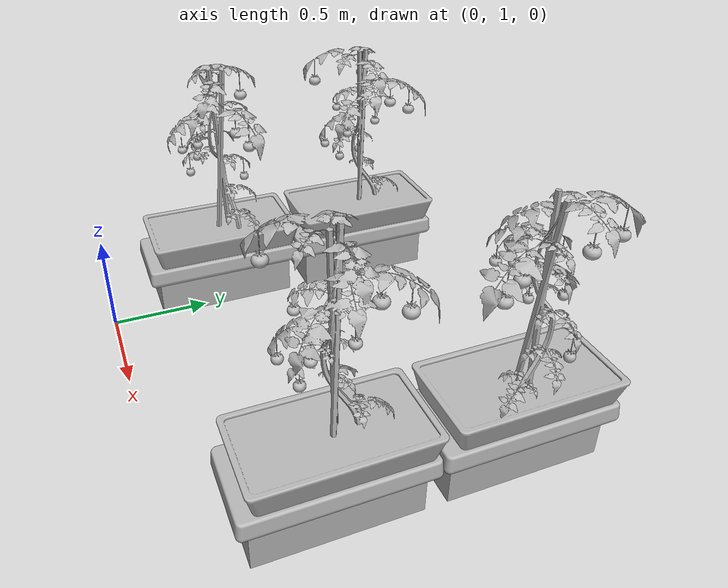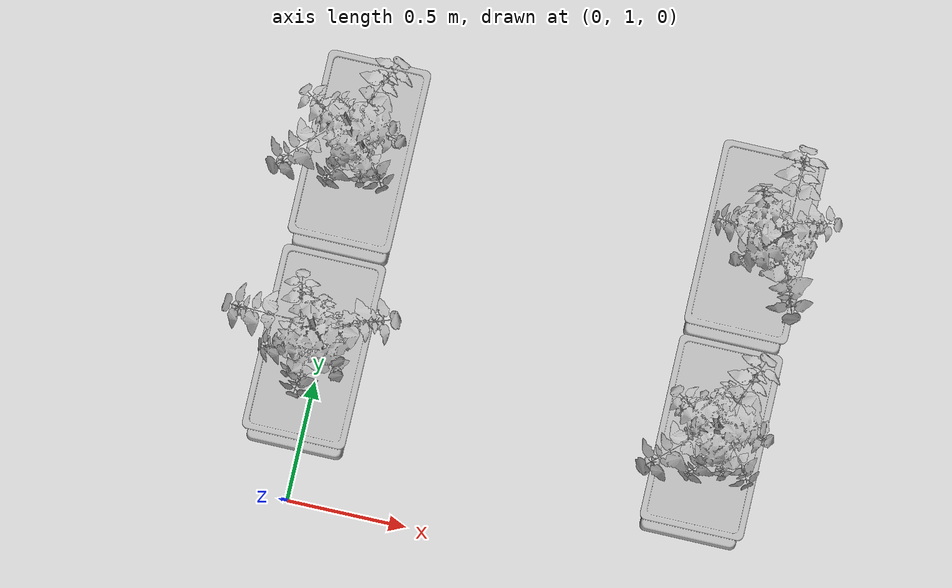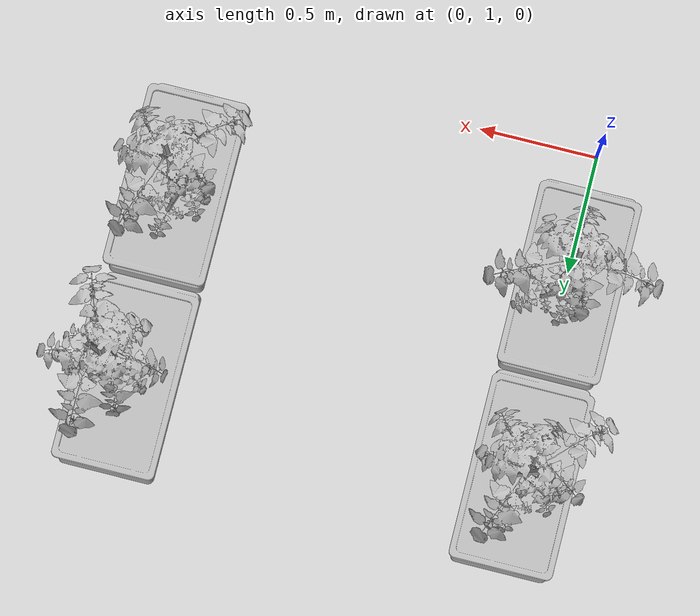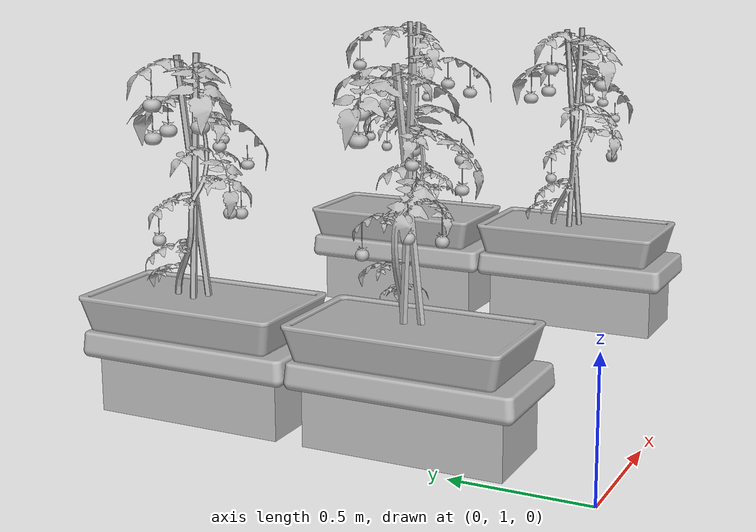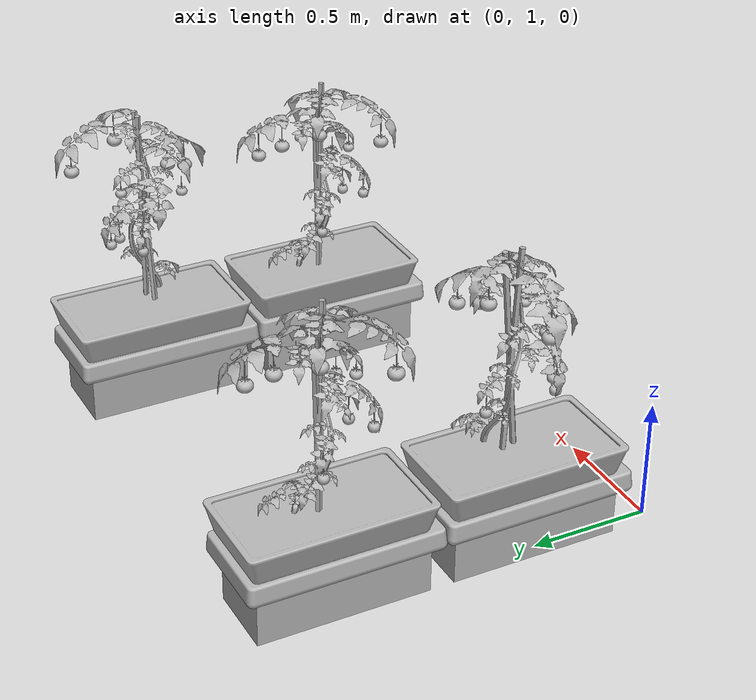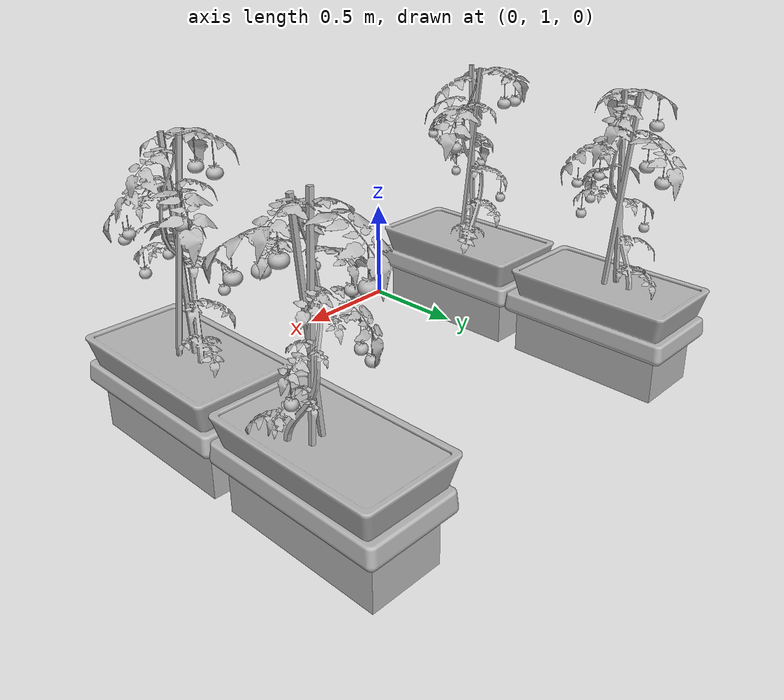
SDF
<sdf version="1.6">
 <world name="default">
  <model name="plant02">
   <static>0</static>
   <link name="tomato_plant_link">
    <inertial>
     <mass>20</mass>
     <inertia><ixx>1</ixx><ixy>0</ixy><ixz>0</ixz><iyy>1</iyy><iyz>0</iyz><izz>1</izz></inertia>
    </inertial>
    <visual name="visual">
     <geometry><mesh><uri>model://tomato_plant/meshes/tomato_plant.obj</uri></mesh></geometry>
    </visual>
    <collision name="collision">
     <pose>0 0 0.01 0 -0 0</pose>
     <geometry><cylinder><radius>0.2</radius><length>0.02</length></cylinder></geometry>
    </collision>
   </link>
   <link name="t_link_0">
    <pose>0.176111 0.046061 0.713729 0 -0 0</pose>
    <inertial>
     <mass>0.1</mass>
     <inertia><ixx>1</ixx><ixy>0</ixy><ixz>0</ixz><iyy>1</iyy><iyz>0</iyz><izz>1</izz></inertia>
    </inertial>
    <collision name="collision"><geometry><sphere><radius>0.02</radius></sphere></geometry></collision>
    <visual name="visual">
     <geometry><mesh><uri>model://green_tomato/meshes/green_tomato.obj</uri></mesh></geometry>
    </visual>
   </link>
   <joint name="t_joint_0" type="fixed">
    <parent>tomato_plant_link</parent>
    <child>t_link_0</child>
    <axis>
     <xyz>0 0 1</xyz>
     <use_parent_model_frame>1</use_parent_model_frame>
     <limit><lower>-1e+16</lower><upper>1e+16</upper></limit>
    </axis>
    <sensor name="force_torque" type="force_torque">
     <always_on>1</always_on>
     <update_rate>250</update_rate>
     <plugin name="breakable_0" filename="libBreakableJointPlugin.so">
      <breaking_force_N>20</breaking_force_N>
     </plugin>
    </sensor>
   </joint>
   <link name="t_link_1">
    <pose>0.063172 0.108629 0.685474 0 -0 0</pose>
    <inertial>
     <mass>0.1</mass>
     <inertia><ixx>1</ixx><ixy>0</ixy><ixz>0</ixz><iyy>1</iyy><iyz>0</iyz><izz>1</izz></inertia>
    </inertial>
    <collision name="collision"><geometry><sphere><radius>0.02</radius></sphere></geometry></collision>
    <visual name="visual">
     <geometry><mesh><uri>model://green_tomato/meshes/green_tomato.obj</uri></mesh></geometry>
    </visual>
   </link>
   <joint name="t_joint_1" type="fixed">
    <parent>tomato_plant_link</parent>
    <child>t_link_1</child>
    <axis>
     <xyz>0 0 1</xyz>
     <use_parent_model_frame>1</use_parent_model_frame>
     <limit><lower>-1e+16</lower><upper>1e+16</upper></limit>
    </axis>
    <sensor name="force_torque" type="force_torque">
     <always_on>1</always_on>
     <update_rate>250</update_rate>
     <plugin name="breakable_1" filename="libBreakableJointPlugin.so">
      <breaking_force_N>20</breaking_force_N>
     </plugin>
    </sensor>
   </joint>
   <link name="t_link_2">
    <pose>0.062027 -0.170581 0.614534 0 -0 0</pose>
    <inertial>
     <mass>0.1</mass>
     <inertia><ixx>1</ixx><ixy>0</ixy><ixz>0</ixz><iyy>1</iyy><iyz>0</iyz><izz>1</izz></inertia>
    </inertial>
    <collision name="collision"><geometry><sphere><radius>0.02</radius></sphere></geometry></collision>
    <visual name="visual">
     <geometry><mesh><uri>model://green_tomato/meshes/green_tomato.obj</uri></mesh></geometry>
    </visual>
   </link>
   <joint name="t_joint_2" type="fixed">
    <parent>tomato_plant_link</parent>
    <child>t_link_2</child>
    <axis>
     <xyz>0 0 1</xyz>
     <use_parent_model_frame>1</use_parent_model_frame>
     <limit><lower>-1e+16</lower><upper>1e+16</upper></limit>
    </axis>
    <sensor name="force_torque" type="force_torque">
     <always_on>1</always_on>
     <update_rate>250</update_rate>
     <plugin name="breakable_2" filename="libBreakableJointPlugin.so">
      <breaking_force_N>20</breaking_force_N>
     </plugin>
    </sensor>
   </joint>
   <link name="t_link_3">
    <pose>0.114746 0.0304 0.926457 0 -0 0</pose>
    <inertial>
     <mass>0.1</mass>
     <inertia><ixx>1</ixx><ixy>0</ixy><ixz>0</ixz><iyy>1</iyy><iyz>0</iyz><izz>1</izz></inertia>
    </inertial>
    <collision name="collision"><geometry><sphere><radius>0.02</radius></sphere></geometry></collision>
    <visual name="visual">
     <geometry><mesh><uri>model://yellow_tomato/meshes/yellow_tomato.obj</uri></mesh></geometry>
    </visual>
   </link>
   <joint name="t_joint_3" type="fixed">
    <parent>tomato_plant_link</parent>
    <child>t_link_3</child>
    <axis>
     <xyz>0 0 1</xyz>
     <use_parent_model_frame>1</use_parent_model_frame>
     <limit><lower>-1e+16</lower><upper>1e+16</upper></limit>
    </axis>
    <sensor name="force_torque" type="force_torque">
     <always_on>1</always_on>
     <update_rate>250</update_rate>
     <plugin name="breakable_3" filename="libBreakableJointPlugin.so">
      <breaking_force_N>20</breaking_force_N>
     </plugin>
    </sensor>
   </joint>
   <link name="t_link_4">
    <pose>0.003426 0.147925 0.840454 0 -0 0</pose>
    <inertial>
     <mass>0.1</mass>
     <inertia><ixx>1</ixx><ixy>0</ixy><ixz>0</ixz><iyy>1</iyy><iyz>0</iyz><izz>1</izz></inertia>
    </inertial>
    <collision name="collision"><geometry><sphere><radius>0.02</radius></sphere></geometry></collision>
    <visual name="visual">
     <geometry><mesh><uri>model://yellow_tomato/meshes/yellow_tomato.obj</uri></mesh></geometry>
    </visual>
   </link>
   <joint name="t_joint_4" type="fixed">
    <parent>tomato_plant_link</parent>
    <child>t_link_4</child>
    <axis>
     <xyz>0 0 1</xyz>
     <use_parent_model_frame>1</use_parent_model_frame>
     <limit><lower>-1e+16</lower><upper>1e+16</upper></limit>
    </axis>
    <sensor name="force_torque" type="force_torque">
     <always_on>1</always_on>
     <update_rate>250</update_rate>
     <plugin name="breakable_4" filename="libBreakableJointPlugin.so">
      <breaking_force_N>20</breaking_force_N>
     </plugin>
    </sensor>
   </joint>
   <link name="t_link_5">
    <pose>-0.12391 0.091553 0.91111 0 -0 0</pose>
    <inertial>
     <mass>0.1</mass>
     <inertia><ixx>1</ixx><ixy>0</ixy><ixz>0</ixz><iyy>1</iyy><iyz>0</iyz><izz>1</izz></inertia>
    </inertial>
    <collision name="collision"><geometry><sphere><radius>0.02</radius></sphere></geometry></collision>
    <visual name="visual">
     <geometry><mesh><uri>model://yellow_tomato/meshes/yellow_tomato.obj</uri></mesh></geometry>
    </visual>
   </link>
   <joint name="t_joint_5" type="fixed">
    <parent>tomato_plant_link</parent>
    <child>t_link_5</child>
    <axis>
     <xyz>0 0 1</xyz>
     <use_parent_model_frame>1</use_parent_model_frame>
     <limit><lower>-1e+16</lower><upper>1e+16</upper></limit>
    </axis>
    <sensor name="force_torque" type="force_torque">
     <always_on>1</always_on>
     <update_rate>250</update_rate>
     <plugin name="breakable_5" filename="libBreakableJointPlugin.so">
      <breaking_force_N>20</breaking_force_N>
     </plugin>
    </sensor>
   </joint>
   <link name="t_link_6">
    <pose>-0.23014 -0.132697 0.911579 0 -0 0</pose>
    <inertial>
     <mass>0.1</mass>
     <inertia><ixx>1</ixx><ixy>0</ixy><ixz>0</ixz><iyy>1</iyy><iyz>0</iyz><izz>1</izz></inertia>
    </inertial>
    <collision name="collision"><geometry><sphere><radius>0.03</radius></sphere></geometry></collision>
    <visual name="visual">
     <geometry><mesh><uri>model://red_tomato/meshes/red_tomato.obj</uri></mesh></geometry>
    </visual>
   </link>
   <joint name="t_joint_6" type="fixed">
    <parent>tomato_plant_link</parent>
    <child>t_link_6</child>
    <axis>
     <xyz>0 0 1</xyz>
     <use_parent_model_frame>1</use_parent_model_frame>
     <limit><lower>-1e+16</lower><upper>1e+16</upper></limit>
    </axis>
    <sensor name="force_torque" type="force_torque">
     <always_on>1</always_on>
     <update_rate>250</update_rate>
     <plugin name="breakable_6" filename="libBreakableJointPlugin.so">
      <breaking_force_N>20</breaking_force_N>
     </plugin>
    </sensor>
   </joint>
   <link name="t_link_7">
    <pose>-0.139776 -0.09326 0.950185 0 -0 0</pose>
    <inertial>
     <mass>0.1</mass>
     <inertia><ixx>1</ixx><ixy>0</ixy><ixz>0</ixz><iyy>1</iyy><iyz>0</iyz><izz>1</izz></inertia>
    </inertial>
    <collision name="collision"><geometry><sphere><radius>0.03</radius></sphere></geometry></collision>
    <visual name="visual">
     <geometry><mesh><uri>model://red_tomato/meshes/red_tomato.obj</uri></mesh></geometry>
    </visual>
   </link>
   <joint name="t_joint_7" type="fixed">
    <parent>tomato_plant_link</parent>
    <child>t_link_7</child>
    <axis>
     <xyz>0 0 1</xyz>
     <use_parent_model_frame>1</use_parent_model_frame>
     <limit><lower>-1e+16</lower><upper>1e+16</upper></limit>
    </axis>
    <sensor name="force_torque" type="force_torque">
     <always_on>1</always_on>
     <update_rate>250</update_rate>
     <plugin name="breakable_7" filename="libBreakableJointPlugin.so">
      <breaking_force_N>20</breaking_force_N>
     </plugin>
    </sensor>
   </joint>
   <link name="t_link_8">
    <pose>0.284181 -0.063758 1.01928 0 -0 0</pose>
    <inertial>
     <mass>0.1</mass>
     <inertia><ixx>1</ixx><ixy>0</ixy><ixz>0</ixz><iyy>1</iyy><iyz>0</iyz><izz>1</izz></inertia>
    </inertial>
    <collision name="collision"><geometry><sphere><radius>0.03</radius></sphere></geometry></collision>
    <visual name="visual">
     <geometry><mesh><uri>model://red_tomato/meshes/red_tomato.obj</uri></mesh></geometry>
    </visual>
   </link>
   <joint name="t_joint_8" type="fixed">
    <parent>tomato_plant_link</parent>
    <child>t_link_8</child>
    <axis>
     <xyz>0 0 1</xyz>
     <use_parent_model_frame>1</use_parent_model_frame>
     <limit><lower>-1e+16</lower><upper>1e+16</upper></limit>
    </axis>
    <sensor name="force_torque" type="force_torque">
     <always_on>1</always_on>
     <update_rate>250</update_rate>
     <plugin name="breakable_8" filename="libBreakableJointPlugin.so">
      <breaking_force_N>20</breaking_force_N>
     </plugin>
    </sensor>
   </joint>
   <link name="t_link_9">
    <pose>0.055319 -0.176349 1.06525 0 -0 0</pose>
    <inertial>
     <mass>0.1</mass>
     <inertia><ixx>1</ixx><ixy>0</ixy><ixz>0</ixz><iyy>1</iyy><iyz>0</iyz><izz>1</izz></inertia>
    </inertial>
    <collision name="collision"><geometry><sphere><radius>0.03</radius></sphere></geometry></collision>
    <visual name="visual">
     <geometry><mesh><uri>model://red_tomato/meshes/red_tomato.obj</uri></mesh></geometry>
    </visual>
   </link>
   <joint name="t_joint_9" type="fixed">
    <parent>tomato_plant_link</parent>
    <child>t_link_9</child>
    <axis>
     <xyz>0 0 1</xyz>
     <use_parent_model_frame>1</use_parent_model_frame>
     <limit><lower>-1e+16</lower><upper>1e+16</upper></limit>
    </axis>
    <sensor name="force_torque" type="force_torque">
     <always_on>1</always_on>
     <update_rate>250</update_rate>
     <plugin name="breakable_9" filename="libBreakableJointPlugin.so">
      <breaking_force_N>20</breaking_force_N>
     </plugin>
    </sensor>
   </joint>
   <pose>0.017437 1.60871 0.113039 0.001015 -0.00195 3.14004</pose>
  </model>
  <model name="trough02">
   <static>1</static>
   <link name="trough_link">
    <visual name="visual"><geometry><mesh><uri>model://trough/meshes/truf.obj</uri></mesh></geometry></visual>
    <collision name="collision">
     <geometry><mesh><uri>model://trough/meshes/truf.obj</uri></mesh></geometry>
    </collision>
   </link>
   <link name="brick">
    <pose>0 -0.2 0 0 -0 0</pose>
    <visual name="visual"><geometry><mesh><uri>model://trough/meshes/brick.obj</uri></mesh></geometry></visual>
    <collision name="collision">
     <geometry><mesh><uri>model://trough/meshes/brick.obj</uri></mesh></geometry>
    </collision>
   </link>
   <pose>0 1.6 0.29 1.57 -0 1.57</pose>
  </model>
  <model name="plant03">
   <static>0</static>
   <link name="tomato_plant_link">
    <inertial>
     <mass>20</mass>
     <inertia><ixx>1</ixx><ixy>0</ixy><ixz>0</ixz><iyy>1</iyy><iyz>0</iyz><izz>1</izz></inertia>
    </inertial>
    <visual name="visual">
     <geometry><mesh><uri>model://tomato_plant/meshes/tomato_plant.obj</uri></mesh></geometry>
    </visual>
    <collision name="collision">
     <pose>0 0 0.01 0 -0 0</pose>
     <geometry><cylinder><radius>0.2</radius><length>0.02</length></cylinder></geometry>
    </collision>
   </link>
   <link name="t_link_0">
    <pose>0.176111 0.046061 0.713729 0 -0 0</pose>
    <inertial>
     <mass>0.1</mass>
     <inertia><ixx>1</ixx><ixy>0</ixy><ixz>0</ixz><iyy>1</iyy><iyz>0</iyz><izz>1</izz></inertia>
    </inertial>
    <collision name="collision"><geometry><sphere><radius>0.02</radius></sphere></geometry></collision>
    <visual name="visual">
     <geometry><mesh><uri>model://green_tomato/meshes/green_tomato.obj</uri></mesh></geometry>
    </visual>
   </link>
   <joint name="t_joint_0" type="fixed">
    <parent>tomato_plant_link</parent>
    <child>t_link_0</child>
    <axis>
     <xyz>0 0 1</xyz>
     <use_parent_model_frame>1</use_parent_model_frame>
     <limit><lower>-1e+16</lower><upper>1e+16</upper></limit>
    </axis>
    <sensor name="force_torque" type="force_torque">
     <always_on>1</always_on>
     <update_rate>250</update_rate>
     <plugin name="breakable_0" filename="libBreakableJointPlugin.so">
      <breaking_force_N>20</breaking_force_N>
     </plugin>
    </sensor>
   </joint>
   <link name="t_link_1">
    <pose>0.063172 0.108629 0.685474 0 -0 0</pose>
    <inertial>
     <mass>0.1</mass>
     <inertia><ixx>1</ixx><ixy>0</ixy><ixz>0</ixz><iyy>1</iyy><iyz>0</iyz><izz>1</izz></inertia>
    </inertial>
    <collision name="collision"><geometry><sphere><radius>0.02</radius></sphere></geometry></collision>
    <visual name="visual">
     <geometry><mesh><uri>model://green_tomato/meshes/green_tomato.obj</uri></mesh></geometry>
    </visual>
   </link>
   <joint name="t_joint_1" type="fixed">
    <parent>tomato_plant_link</parent>
    <child>t_link_1</child>
    <axis>
     <xyz>0 0 1</xyz>
     <use_parent_model_frame>1</use_parent_model_frame>
     <limit><lower>-1e+16</lower><upper>1e+16</upper></limit>
    </axis>
    <sensor name="force_torque" type="force_torque">
     <always_on>1</always_on>
     <update_rate>250</update_rate>
     <plugin name="breakable_1" filename="libBreakableJointPlugin.so">
      <breaking_force_N>20</breaking_force_N>
     </plugin>
    </sensor>
   </joint>
   <link name="t_link_2">
    <pose>0.062027 -0.170581 0.614534 0 -0 0</pose>
    <inertial>
     <mass>0.1</mass>
     <inertia><ixx>1</ixx><ixy>0</ixy><ixz>0</ixz><iyy>1</iyy><iyz>0</iyz><izz>1</izz></inertia>
    </inertial>
    <collision name="collision"><geometry><sphere><radius>0.02</radius></sphere></geometry></collision>
    <visual name="visual">
     <geometry><mesh><uri>model://green_tomato/meshes/green_tomato.obj</uri></mesh></geometry>
    </visual>
   </link>
   <joint name="t_joint_2" type="fixed">
    <parent>tomato_plant_link</parent>
    <child>t_link_2</child>
    <axis>
     <xyz>0 0 1</xyz>
     <use_parent_model_frame>1</use_parent_model_frame>
     <limit><lower>-1e+16</lower><upper>1e+16</upper></limit>
    </axis>
    <sensor name="force_torque" type="force_torque">
     <always_on>1</always_on>
     <update_rate>250</update_rate>
     <plugin name="breakable_2" filename="libBreakableJointPlugin.so">
      <breaking_force_N>20</breaking_force_N>
     </plugin>
    </sensor>
   </joint>
   <link name="t_link_3">
    <pose>0.114746 0.0304 0.926457 0 -0 0</pose>
    <inertial>
     <mass>0.1</mass>
     <inertia><ixx>1</ixx><ixy>0</ixy><ixz>0</ixz><iyy>1</iyy><iyz>0</iyz><izz>1</izz></inertia>
    </inertial>
    <collision name="collision"><geometry><sphere><radius>0.02</radius></sphere></geometry></collision>
    <visual name="visual">
     <geometry><mesh><uri>model://yellow_tomato/meshes/yellow_tomato.obj</uri></mesh></geometry>
    </visual>
   </link>
   <joint name="t_joint_3" type="fixed">
    <parent>tomato_plant_link</parent>
    <child>t_link_3</child>
    <axis>
     <xyz>0 0 1</xyz>
     <use_parent_model_frame>1</use_parent_model_frame>
     <limit><lower>-1e+16</lower><upper>1e+16</upper></limit>
    </axis>
    <sensor name="force_torque" type="force_torque">
     <always_on>1</always_on>
     <update_rate>250</update_rate>
     <plugin name="breakable_3" filename="libBreakableJointPlugin.so">
      <breaking_force_N>20</breaking_force_N>
     </plugin>
    </sensor>
   </joint>
   <link name="t_link_4">
    <pose>0.003426 0.147925 0.840454 0 -0 0</pose>
    <inertial>
     <mass>0.1</mass>
     <inertia><ixx>1</ixx><ixy>0</ixy><ixz>0</ixz><iyy>1</iyy><iyz>0</iyz><izz>1</izz></inertia>
    </inertial>
    <collision name="collision"><geometry><sphere><radius>0.02</radius></sphere></geometry></collision>
    <visual name="visual">
     <geometry><mesh><uri>model://yellow_tomato/meshes/yellow_tomato.obj</uri></mesh></geometry>
    </visual>
   </link>
   <joint name="t_joint_4" type="fixed">
    <parent>tomato_plant_link</parent>
    <child>t_link_4</child>
    <axis>
     <xyz>0 0 1</xyz>
     <use_parent_model_frame>1</use_parent_model_frame>
     <limit><lower>-1e+16</lower><upper>1e+16</upper></limit>
    </axis>
    <sensor name="force_torque" type="force_torque">
     <always_on>1</always_on>
     <update_rate>250</update_rate>
     <plugin name="breakable_4" filename="libBreakableJointPlugin.so">
      <breaking_force_N>20</breaking_force_N>
     </plugin>
    </sensor>
   </joint>
   <link name="t_link_5">
    <pose>-0.12391 0.091553 0.91111 0 -0 0</pose>
    <inertial>
     <mass>0.1</mass>
     <inertia><ixx>1</ixx><ixy>0</ixy><ixz>0</ixz><iyy>1</iyy><iyz>0</iyz><izz>1</izz></inertia>
    </inertial>
    <collision name="collision"><geometry><sphere><radius>0.02</radius></sphere></geometry></collision>
    <visual name="visual">
     <geometry><mesh><uri>model://yellow_tomato/meshes/yellow_tomato.obj</uri></mesh></geometry>
    </visual>
   </link>
   <joint name="t_joint_5" type="fixed">
    <parent>tomato_plant_link</parent>
    <child>t_link_5</child>
    <axis>
     <xyz>0 0 1</xyz>
     <use_parent_model_frame>1</use_parent_model_frame>
     <limit><lower>-1e+16</lower><upper>1e+16</upper></limit>
    </axis>
    <sensor name="force_torque" type="force_torque">
     <always_on>1</always_on>
     <update_rate>250</update_rate>
     <plugin name="breakable_5" filename="libBreakableJointPlugin.so">
      <breaking_force_N>20</breaking_force_N>
     </plugin>
    </sensor>
   </joint>
   <link name="t_link_6">
    <pose>-0.23014 -0.132697 0.911579 0 -0 0</pose>
    <inertial>
     <mass>0.1</mass>
     <inertia><ixx>1</ixx><ixy>0</ixy><ixz>0</ixz><iyy>1</iyy><iyz>0</iyz><izz>1</izz></inertia>
    </inertial>
    <collision name="collision"><geometry><sphere><radius>0.03</radius></sphere></geometry></collision>
    <visual name="visual">
     <geometry><mesh><uri>model://red_tomato/meshes/red_tomato.obj</uri></mesh></geometry>
    </visual>
   </link>
   <joint name="t_joint_6" type="fixed">
    <parent>tomato_plant_link</parent>
    <child>t_link_6</child>
    <axis>
     <xyz>0 0 1</xyz>
     <use_parent_model_frame>1</use_parent_model_frame>
     <limit><lower>-1e+16</lower><upper>1e+16</upper></limit>
    </axis>
    <sensor name="force_torque" type="force_torque">
     <always_on>1</always_on>
     <update_rate>250</update_rate>
     <plugin name="breakable_6" filename="libBreakableJointPlugin.so">
      <breaking_force_N>20</breaking_force_N>
     </plugin>
    </sensor>
   </joint>
   <link name="t_link_7">
    <pose>-0.139776 -0.09326 0.950185 0 -0 0</pose>
    <inertial>
     <mass>0.1</mass>
     <inertia><ixx>1</ixx><ixy>0</ixy><ixz>0</ixz><iyy>1</iyy><iyz>0</iyz><izz>1</izz></inertia>
    </inertial>
    <collision name="collision"><geometry><sphere><radius>0.03</radius></sphere></geometry></collision>
    <visual name="visual">
     <geometry><mesh><uri>model://red_tomato/meshes/red_tomato.obj</uri></mesh></geometry>
    </visual>
   </link>
   <joint name="t_joint_7" type="fixed">
    <parent>tomato_plant_link</parent>
    <child>t_link_7</child>
    <axis>
     <xyz>0 0 1</xyz>
     <use_parent_model_frame>1</use_parent_model_frame>
     <limit><lower>-1e+16</lower><upper>1e+16</upper></limit>
    </axis>
    <sensor name="force_torque" type="force_torque">
     <always_on>1</always_on>
     <update_rate>250</update_rate>
     <plugin name="breakable_7" filename="libBreakableJointPlugin.so">
      <breaking_force_N>20</breaking_force_N>
     </plugin>
    </sensor>
   </joint>
   <link name="t_link_8">
    <pose>0.284181 -0.063758 1.01928 0 -0 0</pose>
    <inertial>
     <mass>0.1</mass>
     <inertia><ixx>1</ixx><ixy>0</ixy><ixz>0</ixz><iyy>1</iyy><iyz>0</iyz><izz>1</izz></inertia>
    </inertial>
    <collision name="collision"><geometry><sphere><radius>0.03</radius></sphere></geometry></collision>
    <visual name="visual">
     <geometry><mesh><uri>model://red_tomato/meshes/red_tomato.obj</uri></mesh></geometry>
    </visual>
   </link>
   <joint name="t_joint_8" type="fixed">
    <parent>tomato_plant_link</parent>
    <child>t_link_8</child>
    <axis>
     <xyz>0 0 1</xyz>
     <use_parent_model_frame>1</use_parent_model_frame>
     <limit><lower>-1e+16</lower><upper>1e+16</upper></limit>
    </axis>
    <sensor name="force_torque" type="force_torque">
     <always_on>1</always_on>
     <update_rate>250</update_rate>
     <plugin name="breakable_8" filename="libBreakableJointPlugin.so">
      <breaking_force_N>20</breaking_force_N>
     </plugin>
    </sensor>
   </joint>
   <link name="t_link_9">
    <pose>0.055319 -0.176349 1.06525 0 -0 0</pose>
    <inertial>
     <mass>0.1</mass>
     <inertia><ixx>1</ixx><ixy>0</ixy><ixz>0</ixz><iyy>1</iyy><iyz>0</iyz><izz>1</izz></inertia>
    </inertial>
    <collision name="collision"><geometry><sphere><radius>0.03</radius></sphere></geometry></collision>
    <visual name="visual">
     <geometry><mesh><uri>model://red_tomato/meshes/red_tomato.obj</uri></mesh></geometry>
    </visual>
   </link>
   <joint name="t_joint_9" type="fixed">
    <parent>tomato_plant_link</parent>
    <child>t_link_9</child>
    <axis>
     <xyz>0 0 1</xyz>
     <use_parent_model_frame>1</use_parent_model_frame>
     <limit><lower>-1e+16</lower><upper>1e+16</upper></limit>
    </axis>
    <sensor name="force_torque" type="force_torque">
     <always_on>1</always_on>
     <update_rate>250</update_rate>
     <plugin name="breakable_9" filename="libBreakableJointPlugin.so">
      <breaking_force_N>20</breaking_force_N>
     </plugin>
    </sensor>
   </joint>
   <pose>0.017221 2.40875 0.112457 -0.000507 -0.001601 -2.35323</pose>
  </model>
  <model name="trough03">
   <static>1</static>
   <link name="trough_link">
    <visual name="visual"><geometry><mesh><uri>model://trough/meshes/truf.obj</uri></mesh></geometry></visual>
    <collision name="collision">
     <geometry><mesh><uri>model://trough/meshes/truf.obj</uri></mesh></geometry>
    </collision>
   </link>
   <link name="brick">
    <pose>0 -0.2 0 0 -0 0</pose>
    <visual name="visual"><geometry><mesh><uri>model://trough/meshes/brick.obj</uri></mesh></geometry></visual>
    <collision name="collision">
     <geometry><mesh><uri>model://trough/meshes/brick.obj</uri></mesh></geometry>
    </collision>
   </link>
   <pose>0 2.4 0.29 1.57 -0 1.57</pose>
  </model>
  <model name="plant12">
   <static>0</static>
   <link name="tomato_plant_link">
    <inertial>
     <mass>20</mass>
     <inertia><ixx>1</ixx><ixy>0</ixy><ixz>0</ixz><iyy>1</iyy><iyz>0</iyz><izz>1</izz></inertia>
    </inertial>
    <visual name="visual">
     <geometry><mesh><uri>model://tomato_plant/meshes/tomato_plant.obj</uri></mesh></geometry>
    </visual>
    <collision name="collision">
     <pose>0 0 0.01 0 -0 0</pose>
     <geometry><cylinder><radius>0.2</radius><length>0.02</length></cylinder></geometry>
    </collision>
   </link>
   <link name="t_link_0">
    <pose>0.176111 0.046061 0.713729 0 -0 0</pose>
    <inertial>
     <mass>0.1</mass>
     <inertia><ixx>1</ixx><ixy>0</ixy><ixz>0</ixz><iyy>1</iyy><iyz>0</iyz><izz>1</izz></inertia>
    </inertial>
    <collision name="collision"><geometry><sphere><radius>0.02</radius></sphere></geometry></collision>
    <visual name="visual">
     <geometry><mesh><uri>model://green_tomato/meshes/green_tomato.obj</uri></mesh></geometry>
    </visual>
   </link>
   <joint name="t_joint_0" type="fixed">
    <parent>tomato_plant_link</parent>
    <child>t_link_0</child>
    <axis>
     <xyz>0 0 1</xyz>
     <use_parent_model_frame>1</use_parent_model_frame>
     <limit><lower>-1e+16</lower><upper>1e+16</upper></limit>
    </axis>
    <sensor name="force_torque" type="force_torque">
     <always_on>1</always_on>
     <update_rate>250</update_rate>
     <plugin name="breakable_0" filename="libBreakableJointPlugin.so">
      <breaking_force_N>20</breaking_force_N>
     </plugin>
    </sensor>
   </joint>
   <link name="t_link_1">
    <pose>0.063172 0.108629 0.685474 0 -0 0</pose>
    <inertial>
     <mass>0.1</mass>
     <inertia><ixx>1</ixx><ixy>0</ixy><ixz>0</ixz><iyy>1</iyy><iyz>0</iyz><izz>1</izz></inertia>
    </inertial>
    <collision name="collision"><geometry><sphere><radius>0.02</radius></sphere></geometry></collision>
    <visual name="visual">
     <geometry><mesh><uri>model://green_tomato/meshes/green_tomato.obj</uri></mesh></geometry>
    </visual>
   </link>
   <joint name="t_joint_1" type="fixed">
    <parent>tomato_plant_link</parent>
    <child>t_link_1</child>
    <axis>
     <xyz>0 0 1</xyz>
     <use_parent_model_frame>1</use_parent_model_frame>
     <limit><lower>-1e+16</lower><upper>1e+16</upper></limit>
    </axis>
    <sensor name="force_torque" type="force_torque">
     <always_on>1</always_on>
     <update_rate>250</update_rate>
     <plugin name="breakable_1" filename="libBreakableJointPlugin.so">
      <breaking_force_N>20</breaking_force_N>
     </plugin>
    </sensor>
   </joint>
   <link name="t_link_2">
    <pose>0.062027 -0.170581 0.614534 0 -0 0</pose>
    <inertial>
     <mass>0.1</mass>
     <inertia><ixx>1</ixx><ixy>0</ixy><ixz>0</ixz><iyy>1</iyy><iyz>0</iyz><izz>1</izz></inertia>
    </inertial>
    <collision name="collision"><geometry><sphere><radius>0.02</radius></sphere></geometry></collision>
    <visual name="visual">
     <geometry><mesh><uri>model://green_tomato/meshes/green_tomato.obj</uri></mesh></geometry>
    </visual>
   </link>
   <joint name="t_joint_2" type="fixed">
    <parent>tomato_plant_link</parent>
    <child>t_link_2</child>
    <axis>
     <xyz>0 0 1</xyz>
     <use_parent_model_frame>1</use_parent_model_frame>
     <limit><lower>-1e+16</lower><upper>1e+16</upper></limit>
    </axis>
    <sensor name="force_torque" type="force_torque">
     <always_on>1</always_on>
     <update_rate>250</update_rate>
     <plugin name="breakable_2" filename="libBreakableJointPlugin.so">
      <breaking_force_N>20</breaking_force_N>
     </plugin>
    </sensor>
   </joint>
   <link name="t_link_3">
    <pose>0.114746 0.0304 0.926457 0 -0 0</pose>
    <inertial>
     <mass>0.1</mass>
     <inertia><ixx>1</ixx><ixy>0</ixy><ixz>0</ixz><iyy>1</iyy><iyz>0</iyz><izz>1</izz></inertia>
    </inertial>
    <collision name="collision"><geometry><sphere><radius>0.02</radius></sphere></geometry></collision>
    <visual name="visual">
     <geometry><mesh><uri>model://yellow_tomato/meshes/yellow_tomato.obj</uri></mesh></geometry>
    </visual>
   </link>
   <joint name="t_joint_3" type="fixed">
    <parent>tomato_plant_link</parent>
    <child>t_link_3</child>
    <axis>
     <xyz>0 0 1</xyz>
     <use_parent_model_frame>1</use_parent_model_frame>
     <limit><lower>-1e+16</lower><upper>1e+16</upper></limit>
    </axis>
    <sensor name="force_torque" type="force_torque">
     <always_on>1</always_on>
     <update_rate>250</update_rate>
     <plugin name="breakable_3" filename="libBreakableJointPlugin.so">
      <breaking_force_N>20</breaking_force_N>
     </plugin>
    </sensor>
   </joint>
   <link name="t_link_4">
    <pose>0.003426 0.147925 0.840454 0 -0 0</pose>
    <inertial>
     <mass>0.1</mass>
     <inertia><ixx>1</ixx><ixy>0</ixy><ixz>0</ixz><iyy>1</iyy><iyz>0</iyz><izz>1</izz></inertia>
    </inertial>
    <collision name="collision"><geometry><sphere><radius>0.02</radius></sphere></geometry></collision>
    <visual name="visual">
     <geometry><mesh><uri>model://yellow_tomato/meshes/yellow_tomato.obj</uri></mesh></geometry>
    </visual>
   </link>
   <joint name="t_joint_4" type="fixed">
    <parent>tomato_plant_link</parent>
    <child>t_link_4</child>
    <axis>
     <xyz>0 0 1</xyz>
     <use_parent_model_frame>1</use_parent_model_frame>
     <limit><lower>-1e+16</lower><upper>1e+16</upper></limit>
    </axis>
    <sensor name="force_torque" type="force_torque">
     <always_on>1</always_on>
     <update_rate>250</update_rate>
     <plugin name="breakable_4" filename="libBreakableJointPlugin.so">
      <breaking_force_N>20</breaking_force_N>
     </plugin>
    </sensor>
   </joint>
   <link name="t_link_5">
    <pose>-0.12391 0.091553 0.91111 0 -0 0</pose>
    <inertial>
     <mass>0.1</mass>
     <inertia><ixx>1</ixx><ixy>0</ixy><ixz>0</ixz><iyy>1</iyy><iyz>0</iyz><izz>1</izz></inertia>
    </inertial>
    <collision name="collision"><geometry><sphere><radius>0.02</radius></sphere></geometry></collision>
    <visual name="visual">
     <geometry><mesh><uri>model://yellow_tomato/meshes/yellow_tomato.obj</uri></mesh></geometry>
    </visual>
   </link>
   <joint name="t_joint_5" type="fixed">
    <parent>tomato_plant_link</parent>
    <child>t_link_5</child>
    <axis>
     <xyz>0 0 1</xyz>
     <use_parent_model_frame>1</use_parent_model_frame>
     <limit><lower>-1e+16</lower><upper>1e+16</upper></limit>
    </axis>
    <sensor name="force_torque" type="force_torque">
     <always_on>1</always_on>
     <update_rate>250</update_rate>
     <plugin name="breakable_5" filename="libBreakableJointPlugin.so">
      <breaking_force_N>20</breaking_force_N>
     </plugin>
    </sensor>
   </joint>
   <link name="t_link_6">
    <pose>-0.23014 -0.132697 0.911579 0 -0 0</pose>
    <inertial>
     <mass>0.1</mass>
     <inertia><ixx>1</ixx><ixy>0</ixy><ixz>0</ixz><iyy>1</iyy><iyz>0</iyz><izz>1</izz></inertia>
    </inertial>
    <collision name="collision"><geometry><sphere><radius>0.03</radius></sphere></geometry></collision>
    <visual name="visual">
     <geometry><mesh><uri>model://red_tomato/meshes/red_tomato.obj</uri></mesh></geometry>
    </visual>
   </link>
   <joint name="t_joint_6" type="fixed">
    <parent>tomato_plant_link</parent>
    <child>t_link_6</child>
    <axis>
     <xyz>0 0 1</xyz>
     <use_parent_model_frame>1</use_parent_model_frame>
     <limit><lower>-1e+16</lower><upper>1e+16</upper></limit>
    </axis>
    <sensor name="force_torque" type="force_torque">
     <always_on>1</always_on>
     <update_rate>250</update_rate>
     <plugin name="breakable_6" filename="libBreakableJointPlugin.so">
      <breaking_force_N>20</breaking_force_N>
     </plugin>
    </sensor>
   </joint>
   <link name="t_link_7">
    <pose>-0.139776 -0.09326 0.950185 0 -0 0</pose>
    <inertial>
     <mass>0.1</mass>
     <inertia><ixx>1</ixx><ixy>0</ixy><ixz>0</ixz><iyy>1</iyy><iyz>0</iyz><izz>1</izz></inertia>
    </inertial>
    <collision name="collision"><geometry><sphere><radius>0.03</radius></sphere></geometry></collision>
    <visual name="visual">
     <geometry><mesh><uri>model://red_tomato/meshes/red_tomato.obj</uri></mesh></geometry>
    </visual>
   </link>
   <joint name="t_joint_7" type="fixed">
    <parent>tomato_plant_link</parent>
    <child>t_link_7</child>
    <axis>
     <xyz>0 0 1</xyz>
     <use_parent_model_frame>1</use_parent_model_frame>
     <limit><lower>-1e+16</lower><upper>1e+16</upper></limit>
    </axis>
    <sensor name="force_torque" type="force_torque">
     <always_on>1</always_on>
     <update_rate>250</update_rate>
     <plugin name="breakable_7" filename="libBreakableJointPlugin.so">
      <breaking_force_N>20</breaking_force_N>
     </plugin>
    </sensor>
   </joint>
   <link name="t_link_8">
    <pose>0.284181 -0.063758 1.01928 0 -0 0</pose>
    <inertial>
     <mass>0.1</mass>
     <inertia><ixx>1</ixx><ixy>0</ixy><ixz>0</ixz><iyy>1</iyy><iyz>0</iyz><izz>1</izz></inertia>
    </inertial>
    <collision name="collision"><geometry><sphere><radius>0.03</radius></sphere></geometry></collision>
    <visual name="visual">
     <geometry><mesh><uri>model://red_tomato/meshes/red_tomato.obj</uri></mesh></geometry>
    </visual>
   </link>
   <joint name="t_joint_8" type="fixed">
    <parent>tomato_plant_link</parent>
    <child>t_link_8</child>
    <axis>
     <xyz>0 0 1</xyz>
     <use_parent_model_frame>1</use_parent_model_frame>
     <limit><lower>-1e+16</lower><upper>1e+16</upper></limit>
    </axis>
    <sensor name="force_torque" type="force_torque">
     <always_on>1</always_on>
     <update_rate>250</update_rate>
     <plugin name="breakable_8" filename="libBreakableJointPlugin.so">
      <breaking_force_N>20</breaking_force_N>
     </plugin>
    </sensor>
   </joint>
   <link name="t_link_9">
    <pose>0.055319 -0.176349 1.06525 0 -0 0</pose>
    <inertial>
     <mass>0.1</mass>
     <inertia><ixx>1</ixx><ixy>0</ixy><ixz>0</ixz><iyy>1</iyy><iyz>0</iyz><izz>1</izz></inertia>
    </inertial>
    <collision name="collision"><geometry><sphere><radius>0.03</radius></sphere></geometry></collision>
    <visual name="visual">
     <geometry><mesh><uri>model://red_tomato/meshes/red_tomato.obj</uri></mesh></geometry>
    </visual>
   </link>
   <joint name="t_joint_9" type="fixed">
    <parent>tomato_plant_link</parent>
    <child>t_link_9</child>
    <axis>
     <xyz>0 0 1</xyz>
     <use_parent_model_frame>1</use_parent_model_frame>
     <limit><lower>-1e+16</lower><upper>1e+16</upper></limit>
    </axis>
    <sensor name="force_torque" type="force_torque">
     <always_on>1</always_on>
     <update_rate>250</update_rate>
     <plugin name="breakable_9" filename="libBreakableJointPlugin.so">
      <breaking_force_N>20</breaking_force_N>
     </plugin>
    </sensor>
   </joint>
   <pose>1.63729 1.60864 0.110525 -0.000663 -0.001823 -2.35322</pose>
  </model>
  <model name="trough12">
   <static>1</static>
   <link name="trough_link">
    <visual name="visual"><geometry><mesh><uri>model://trough/meshes/truf.obj</uri></mesh></geometry></visual>
    <collision name="collision">
     <geometry><mesh><uri>model://trough/meshes/truf.obj</uri></mesh></geometry>
    </collision>
   </link>
   <link name="brick">
    <pose>0 -0.2 0 0 -0 0</pose>
    <visual name="visual"><geometry><mesh><uri>model://trough/meshes/brick.obj</uri></mesh></geometry></visual>
    <collision name="collision">
     <geometry><mesh><uri>model://trough/meshes/brick.obj</uri></mesh></geometry>
    </collision>
   </link>
   <pose>1.62 1.6 0.29 1.57 -0 1.57</pose>
  </model>
  <model name="plant13">
   <static>0</static>
   <link name="tomato_plant_link">
    <inertial>
     <mass>20</mass>
     <inertia><ixx>1</ixx><ixy>0</ixy><ixz>0</ixz><iyy>1</iyy><iyz>0</iyz><izz>1</izz></inertia>
    </inertial>
    <visual name="visual">
     <geometry><mesh><uri>model://tomato_plant/meshes/tomato_plant.obj</uri></mesh></geometry>
    </visual>
    <collision name="collision">
     <pose>0 0 0.01 0 -0 0</pose>
     <geometry><cylinder><radius>0.2</radius><length>0.02</length></cylinder></geometry>
    </collision>
   </link>
   <link name="t_link_0">
    <pose>0.176111 0.046061 0.713729 0 -0 0</pose>
    <inertial>
     <mass>0.1</mass>
     <inertia><ixx>1</ixx><ixy>0</ixy><ixz>0</ixz><iyy>1</iyy><iyz>0</iyz><izz>1</izz></inertia>
    </inertial>
    <collision name="collision"><geometry><sphere><radius>0.02</radius></sphere></geometry></collision>
    <visual name="visual">
     <geometry><mesh><uri>model://green_tomato/meshes/green_tomato.obj</uri></mesh></geometry>
    </visual>
   </link>
   <joint name="t_joint_0" type="fixed">
    <parent>tomato_plant_link</parent>
    <child>t_link_0</child>
    <axis>
     <xyz>0 0 1</xyz>
     <use_parent_model_frame>1</use_parent_model_frame>
     <limit><lower>-1e+16</lower><upper>1e+16</upper></limit>
    </axis>
    <sensor name="force_torque" type="force_torque">
     <always_on>1</always_on>
     <update_rate>250</update_rate>
     <plugin name="breakable_0" filename="libBreakableJointPlugin.so">
      <breaking_force_N>20</breaking_force_N>
     </plugin>
    </sensor>
   </joint>
   <link name="t_link_1">
    <pose>0.063172 0.108629 0.685474 0 -0 0</pose>
    <inertial>
     <mass>0.1</mass>
     <inertia><ixx>1</ixx><ixy>0</ixy><ixz>0</ixz><iyy>1</iyy><iyz>0</iyz><izz>1</izz></inertia>
    </inertial>
    <collision name="collision"><geometry><sphere><radius>0.02</radius></sphere></geometry></collision>
    <visual name="visual">
     <geometry><mesh><uri>model://green_tomato/meshes/green_tomato.obj</uri></mesh></geometry>
    </visual>
   </link>
   <joint name="t_joint_1" type="fixed">
    <parent>tomato_plant_link</parent>
    <child>t_link_1</child>
    <axis>
     <xyz>0 0 1</xyz>
     <use_parent_model_frame>1</use_parent_model_frame>
     <limit><lower>-1e+16</lower><upper>1e+16</upper></limit>
    </axis>
    <sensor name="force_torque" type="force_torque">
     <always_on>1</always_on>
     <update_rate>250</update_rate>
     <plugin name="breakable_1" filename="libBreakableJointPlugin.so">
      <breaking_force_N>20</breaking_force_N>
     </plugin>
    </sensor>
   </joint>
   <link name="t_link_2">
    <pose>0.062027 -0.170581 0.614534 0 -0 0</pose>
    <inertial>
     <mass>0.1</mass>
     <inertia><ixx>1</ixx><ixy>0</ixy><ixz>0</ixz><iyy>1</iyy><iyz>0</iyz><izz>1</izz></inertia>
    </inertial>
    <collision name="collision"><geometry><sphere><radius>0.02</radius></sphere></geometry></collision>
    <visual name="visual">
     <geometry><mesh><uri>model://green_tomato/meshes/green_tomato.obj</uri></mesh></geometry>
    </visual>
   </link>
   <joint name="t_joint_2" type="fixed">
    <parent>tomato_plant_link</parent>
    <child>t_link_2</child>
    <axis>
     <xyz>0 0 1</xyz>
     <use_parent_model_frame>1</use_parent_model_frame>
     <limit><lower>-1e+16</lower><upper>1e+16</upper></limit>
    </axis>
    <sensor name="force_torque" type="force_torque">
     <always_on>1</always_on>
     <update_rate>250</update_rate>
     <plugin name="breakable_2" filename="libBreakableJointPlugin.so">
      <breaking_force_N>20</breaking_force_N>
     </plugin>
    </sensor>
   </joint>
   <link name="t_link_3">
    <pose>0.114746 0.0304 0.926457 0 -0 0</pose>
    <inertial>
     <mass>0.1</mass>
     <inertia><ixx>1</ixx><ixy>0</ixy><ixz>0</ixz><iyy>1</iyy><iyz>0</iyz><izz>1</izz></inertia>
    </inertial>
    <collision name="collision"><geometry><sphere><radius>0.02</radius></sphere></geometry></collision>
    <visual name="visual">
     <geometry><mesh><uri>model://yellow_tomato/meshes/yellow_tomato.obj</uri></mesh></geometry>
    </visual>
   </link>
   <joint name="t_joint_3" type="fixed">
    <parent>tomato_plant_link</parent>
    <child>t_link_3</child>
    <axis>
     <xyz>0 0 1</xyz>
     <use_parent_model_frame>1</use_parent_model_frame>
     <limit><lower>-1e+16</lower><upper>1e+16</upper></limit>
    </axis>
    <sensor name="force_torque" type="force_torque">
     <always_on>1</always_on>
     <update_rate>250</update_rate>
     <plugin name="breakable_3" filename="libBreakableJointPlugin.so">
      <breaking_force_N>20</breaking_force_N>
     </plugin>
    </sensor>
   </joint>
   <link name="t_link_4">
    <pose>0.003426 0.147925 0.840454 0 -0 0</pose>
    <inertial>
     <mass>0.1</mass>
     <inertia><ixx>1</ixx><ixy>0</ixy><ixz>0</ixz><iyy>1</iyy><iyz>0</iyz><izz>1</izz></inertia>
    </inertial>
    <collision name="collision"><geometry><sphere><radius>0.02</radius></sphere></geometry></collision>
    <visual name="visual">
     <geometry><mesh><uri>model://yellow_tomato/meshes/yellow_tomato.obj</uri></mesh></geometry>
    </visual>
   </link>
   <joint name="t_joint_4" type="fixed">
    <parent>tomato_plant_link</parent>
    <child>t_link_4</child>
    <axis>
     <xyz>0 0 1</xyz>
     <use_parent_model_frame>1</use_parent_model_frame>
     <limit><lower>-1e+16</lower><upper>1e+16</upper></limit>
    </axis>
    <sensor name="force_torque" type="force_torque">
     <always_on>1</always_on>
     <update_rate>250</update_rate>
     <plugin name="breakable_4" filename="libBreakableJointPlugin.so">
      <breaking_force_N>20</breaking_force_N>
     </plugin>
    </sensor>
   </joint>
   <link name="t_link_5">
    <pose>-0.12391 0.091553 0.91111 0 -0 0</pose>
    <inertial>
     <mass>0.1</mass>
     <inertia><ixx>1</ixx><ixy>0</ixy><ixz>0</ixz><iyy>1</iyy><iyz>0</iyz><izz>1</izz></inertia>
    </inertial>
    <collision name="collision"><geometry><sphere><radius>0.02</radius></sphere></geometry></collision>
    <visual name="visual">
     <geometry><mesh><uri>model://yellow_tomato/meshes/yellow_tomato.obj</uri></mesh></geometry>
    </visual>
   </link>
   <joint name="t_joint_5" type="fixed">
    <parent>tomato_plant_link</parent>
    <child>t_link_5</child>
    <axis>
     <xyz>0 0 1</xyz>
     <use_parent_model_frame>1</use_parent_model_frame>
     <limit><lower>-1e+16</lower><upper>1e+16</upper></limit>
    </axis>
    <sensor name="force_torque" type="force_torque">
     <always_on>1</always_on>
     <update_rate>250</update_rate>
     <plugin name="breakable_5" filename="libBreakableJointPlugin.so">
      <breaking_force_N>20</breaking_force_N>
     </plugin>
    </sensor>
   </joint>
   <link name="t_link_6">
    <pose>-0.23014 -0.132697 0.911579 0 -0 0</pose>
    <inertial>
     <mass>0.1</mass>
     <inertia><ixx>1</ixx><ixy>0</ixy><ixz>0</ixz><iyy>1</iyy><iyz>0</iyz><izz>1</izz></inertia>
    </inertial>
    <collision name="collision"><geometry><sphere><radius>0.03</radius></sphere></geometry></collision>
    <visual name="visual">
     <geometry><mesh><uri>model://red_tomato/meshes/red_tomato.obj</uri></mesh></geometry>
    </visual>
   </link>
   <joint name="t_joint_6" type="fixed">
    <parent>tomato_plant_link</parent>
    <child>t_link_6</child>
    <axis>
     <xyz>0 0 1</xyz>
     <use_parent_model_frame>1</use_parent_model_frame>
     <limit><lower>-1e+16</lower><upper>1e+16</upper></limit>
    </axis>
    <sensor name="force_torque" type="force_torque">
     <always_on>1</always_on>
     <update_rate>250</update_rate>
     <plugin name="breakable_6" filename="libBreakableJointPlugin.so">
      <breaking_force_N>20</breaking_force_N>
     </plugin>
    </sensor>
   </joint>
   <link name="t_link_7">
    <pose>-0.139776 -0.09326 0.950185 0 -0 0</pose>
    <inertial>
     <mass>0.1</mass>
     <inertia><ixx>1</ixx><ixy>0</ixy><ixz>0</ixz><iyy>1</iyy><iyz>0</iyz><izz>1</izz></inertia>
    </inertial>
    <collision name="collision"><geometry><sphere><radius>0.03</radius></sphere></geometry></collision>
    <visual name="visual">
     <geometry><mesh><uri>model://red_tomato/meshes/red_tomato.obj</uri></mesh></geometry>
    </visual>
   </link>
   <joint name="t_joint_7" type="fixed">
    <parent>tomato_plant_link</parent>
    <child>t_link_7</child>
    <axis>
     <xyz>0 0 1</xyz>
     <use_parent_model_frame>1</use_parent_model_frame>
     <limit><lower>-1e+16</lower><upper>1e+16</upper></limit>
    </axis>
    <sensor name="force_torque" type="force_torque">
     <always_on>1</always_on>
     <update_rate>250</update_rate>
     <plugin name="breakable_7" filename="libBreakableJointPlugin.so">
      <breaking_force_N>20</breaking_force_N>
     </plugin>
    </sensor>
   </joint>
   <link name="t_link_8">
    <pose>0.284181 -0.063758 1.01928 0 -0 0</pose>
    <inertial>
     <mass>0.1</mass>
     <inertia><ixx>1</ixx><ixy>0</ixy><ixz>0</ixz><iyy>1</iyy><iyz>0</iyz><izz>1</izz></inertia>
    </inertial>
    <collision name="collision"><geometry><sphere><radius>0.03</radius></sphere></geometry></collision>
    <visual name="visual">
     <geometry><mesh><uri>model://red_tomato/meshes/red_tomato.obj</uri></mesh></geometry>
    </visual>
   </link>
   <joint name="t_joint_8" type="fixed">
    <parent>tomato_plant_link</parent>
    <child>t_link_8</child>
    <axis>
     <xyz>0 0 1</xyz>
     <use_parent_model_frame>1</use_parent_model_frame>
     <limit><lower>-1e+16</lower><upper>1e+16</upper></limit>
    </axis>
    <sensor name="force_torque" type="force_torque">
     <always_on>1</always_on>
     <update_rate>250</update_rate>
     <plugin name="breakable_8" filename="libBreakableJointPlugin.so">
      <breaking_force_N>20</breaking_force_N>
     </plugin>
    </sensor>
   </joint>
   <link name="t_link_9">
    <pose>0.055319 -0.176349 1.06525 0 -0 0</pose>
    <inertial>
     <mass>0.1</mass>
     <inertia><ixx>1</ixx><ixy>0</ixy><ixz>0</ixz><iyy>1</iyy><iyz>0</iyz><izz>1</izz></inertia>
    </inertial>
    <collision name="collision"><geometry><sphere><radius>0.03</radius></sphere></geometry></collision>
    <visual name="visual">
     <geometry><mesh><uri>model://red_tomato/meshes/red_tomato.obj</uri></mesh></geometry>
    </visual>
   </link>
   <joint name="t_joint_9" type="fixed">
    <parent>tomato_plant_link</parent>
    <child>t_link_9</child>
    <axis>
     <xyz>0 0 1</xyz>
     <use_parent_model_frame>1</use_parent_model_frame>
     <limit><lower>-1e+16</lower><upper>1e+16</upper></limit>
    </axis>
    <sensor name="force_torque" type="force_torque">
     <always_on>1</always_on>
     <update_rate>250</update_rate>
     <plugin name="breakable_9" filename="libBreakableJointPlugin.so">
      <breaking_force_N>20</breaking_force_N>
     </plugin>
    </sensor>
   </joint>
   <pose>1.63706 2.40853 0.109805 0.001655 0.000473 1.56974</pose>
  </model>
  <model name="trough13">
   <static>1</static>
   <link name="trough_link">
    <visual name="visual"><geometry><mesh><uri>model://trough/meshes/truf.obj</uri></mesh></geometry></visual>
    <collision name="collision">
     <geometry><mesh><uri>model://trough/meshes/truf.obj</uri></mesh></geometry>
    </collision>
   </link>
   <link name="brick">
    <pose>0 -0.2 0 0 -0 0</pose>
    <visual name="visual"><geometry><mesh><uri>model://trough/meshes/brick.obj</uri></mesh></geometry></visual>
    <collision name="collision">
     <geometry><mesh><uri>model://trough/meshes/brick.obj</uri></mesh></geometry>
    </collision>
   </link>
   <pose>1.62 2.4 0.29 1.57 -0 1.57</pose>
  </model>
 </world>
</sdf>
